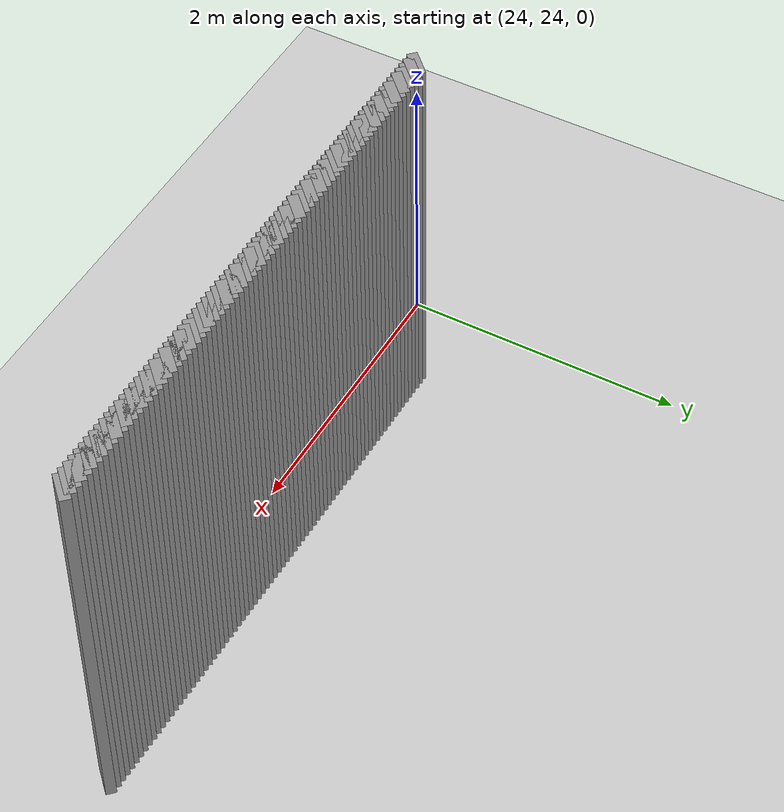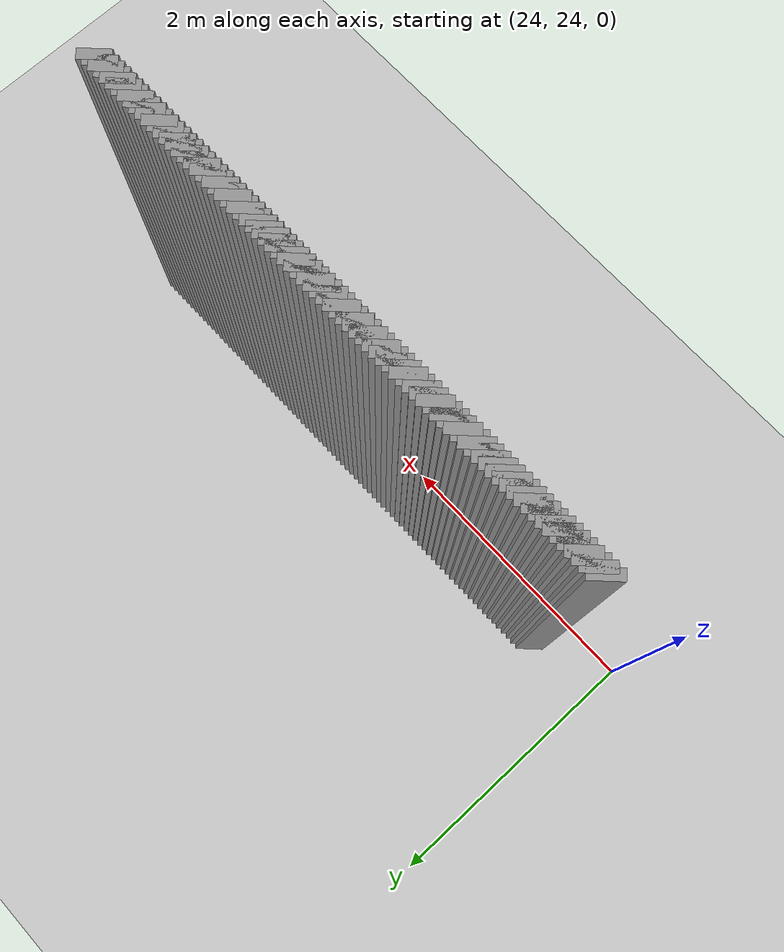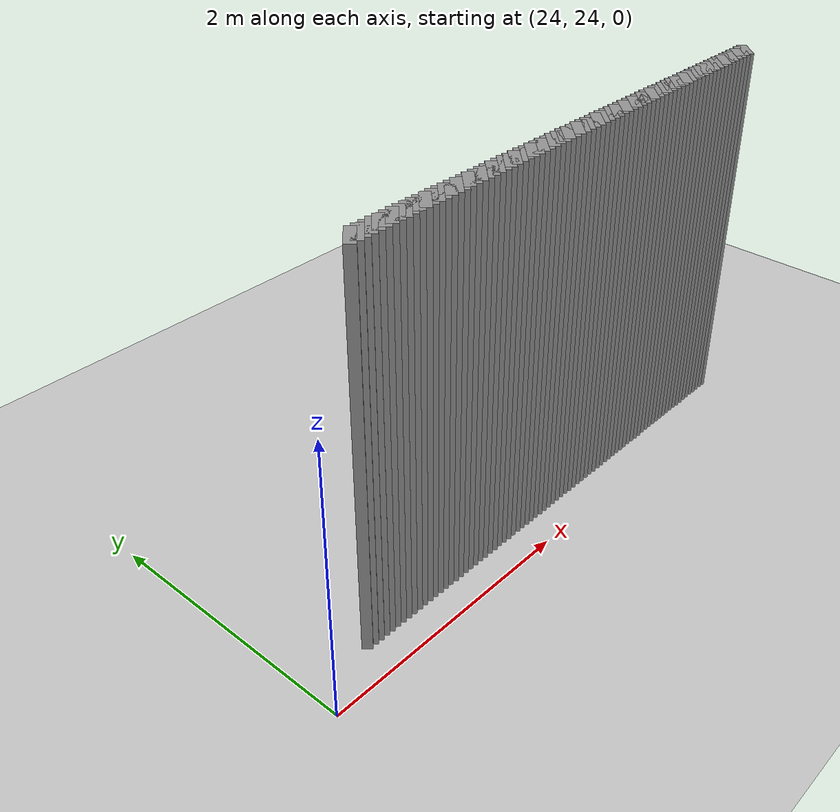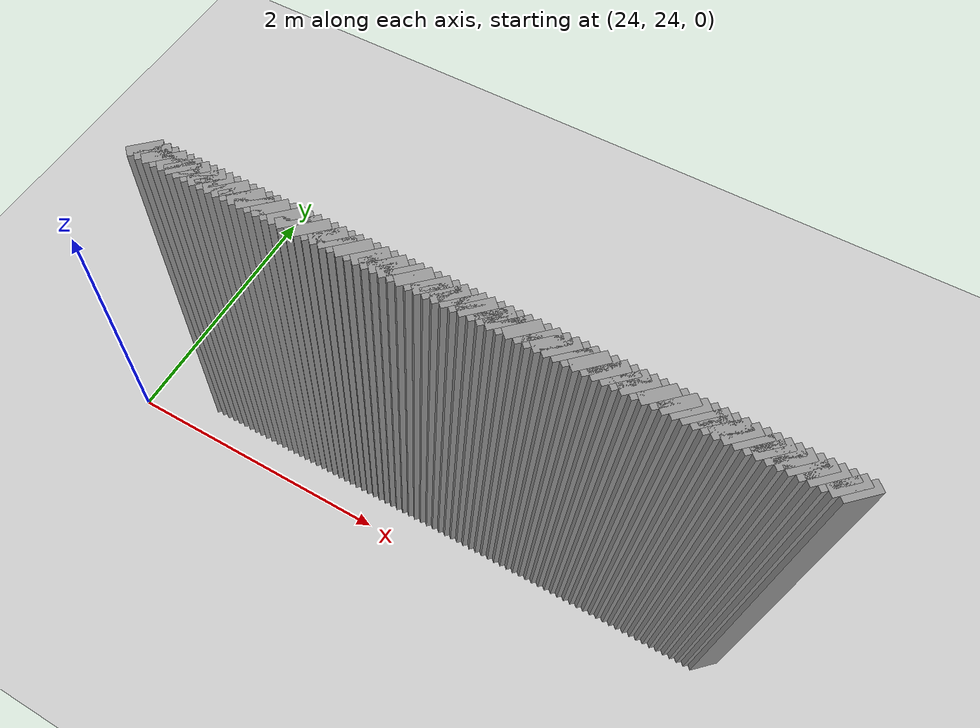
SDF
<sdf version="1.5">
 <world name="default">
  <include><uri>model://ground_plane</uri></include>
  <include><uri>model://sun</uri></include>
  <model name="grey_wall_1">
   <static>1</static>
   <link name="link">
    <pose>24.55 24.3  1.4 0 0 -0.785398163397</pose>
    <collision name="collision"><geometry><box><size>0.0707106781187 .2  2.8</size></box></geometry></collision>
    <visual name="visual">
     <cast_shadows>0</cast_shadows>
     <geometry><box><size>0.0707106781187 .2  2.8</size></box></geometry>
     <material>
      <script>
       <uri>model://grey_wall/materials/scripts</uri>
       <uri>model://grey_wall/materials/textures</uri>
       <name>vrc/grey_wall</name>
      </script>
     </material>
    </visual>
   </link>
  </model>
  <model name="grey_wall_2">
   <static>1</static>
   <link name="link">
    <pose>24.6 24.3  1.4 0 0 -0.785398163397</pose>
    <collision name="collision"><geometry><box><size>0.0707106781187 .2  2.8</size></box></geometry></collision>
    <visual name="visual">
     <cast_shadows>0</cast_shadows>
     <geometry><box><size>0.0707106781187 .2  2.8</size></box></geometry>
     <material>
      <script>
       <uri>model://grey_wall/materials/scripts</uri>
       <uri>model://grey_wall/materials/textures</uri>
       <name>vrc/grey_wall</name>
      </script>
     </material>
    </visual>
   </link>
  </model>
  <model name="grey_wall_3">
   <static>1</static>
   <link name="link">
    <pose>24.65 24.3  1.4 0 0 -0.785398163397</pose>
    <collision name="collision"><geometry><box><size>0.0707106781187 .2  2.8</size></box></geometry></collision>
    <visual name="visual">
     <cast_shadows>0</cast_shadows>
     <geometry><box><size>0.0707106781187 .2  2.8</size></box></geometry>
     <material>
      <script>
       <uri>model://grey_wall/materials/scripts</uri>
       <uri>model://grey_wall/materials/textures</uri>
       <name>vrc/grey_wall</name>
      </script>
     </material>
    </visual>
   </link>
  </model>
  <model name="grey_wall_4">
   <static>1</static>
   <link name="link">
    <pose>24.7 24.3  1.4 0 0 -0.785398163397</pose>
    <collision name="collision"><geometry><box><size>0.0707106781187 .2  2.8</size></box></geometry></collision>
    <visual name="visual">
     <cast_shadows>0</cast_shadows>
     <geometry><box><size>0.0707106781187 .2  2.8</size></box></geometry>
     <material>
      <script>
       <uri>model://grey_wall/materials/scripts</uri>
       <uri>model://grey_wall/materials/textures</uri>
       <name>vrc/grey_wall</name>
      </script>
     </material>
    </visual>
   </link>
  </model>
  <model name="grey_wall_5">
   <static>1</static>
   <link name="link">
    <pose>24.75 24.3  1.4 0 0 -0.785398163397</pose>
    <collision name="collision"><geometry><box><size>0.0707106781187 .2  2.8</size></box></geometry></collision>
    <visual name="visual">
     <cast_shadows>0</cast_shadows>
     <geometry><box><size>0.0707106781187 .2  2.8</size></box></geometry>
     <material>
      <script>
       <uri>model://grey_wall/materials/scripts</uri>
       <uri>model://grey_wall/materials/textures</uri>
       <name>vrc/grey_wall</name>
      </script>
     </material>
    </visual>
   </link>
  </model>
  <model name="grey_wall_6">
   <static>1</static>
   <link name="link">
    <pose>24.8 24.3  1.4 0 0 -0.785398163397</pose>
    <collision name="collision"><geometry><box><size>0.0707106781187 .2  2.8</size></box></geometry></collision>
    <visual name="visual">
     <cast_shadows>0</cast_shadows>
     <geometry><box><size>0.0707106781187 .2  2.8</size></box></geometry>
     <material>
      <script>
       <uri>model://grey_wall/materials/scripts</uri>
       <uri>model://grey_wall/materials/textures</uri>
       <name>vrc/grey_wall</name>
      </script>
     </material>
    </visual>
   </link>
  </model>
  <model name="grey_wall_7">
   <static>1</static>
   <link name="link">
    <pose>24.85 24.3  1.4 0 0 -0.785398163397</pose>
    <collision name="collision"><geometry><box><size>0.0707106781187 .2  2.8</size></box></geometry></collision>
    <visual name="visual">
     <cast_shadows>0</cast_shadows>
     <geometry><box><size>0.0707106781187 .2  2.8</size></box></geometry>
     <material>
      <script>
       <uri>model://grey_wall/materials/scripts</uri>
       <uri>model://grey_wall/materials/textures</uri>
       <name>vrc/grey_wall</name>
      </script>
     </material>
    </visual>
   </link>
  </model>
  <model name="grey_wall_8">
   <static>1</static>
   <link name="link">
    <pose>24.9 24.3  1.4 0 0 -0.785398163397</pose>
    <collision name="collision"><geometry><box><size>0.0707106781187 .2  2.8</size></box></geometry></collision>
    <visual name="visual">
     <cast_shadows>0</cast_shadows>
     <geometry><box><size>0.0707106781187 .2  2.8</size></box></geometry>
     <material>
      <script>
       <uri>model://grey_wall/materials/scripts</uri>
       <uri>model://grey_wall/materials/textures</uri>
       <name>vrc/grey_wall</name>
      </script>
     </material>
    </visual>
   </link>
  </model>
  <model name="grey_wall_9">
   <static>1</static>
   <link name="link">
    <pose>24.95 24.3  1.4 0 0 -0.785398163397</pose>
    <collision name="collision"><geometry><box><size>0.0707106781187 .2  2.8</size></box></geometry></collision>
    <visual name="visual">
     <cast_shadows>0</cast_shadows>
     <geometry><box><size>0.0707106781187 .2  2.8</size></box></geometry>
     <material>
      <script>
       <uri>model://grey_wall/materials/scripts</uri>
       <uri>model://grey_wall/materials/textures</uri>
       <name>vrc/grey_wall</name>
      </script>
     </material>
    </visual>
   </link>
  </model>
  <model name="grey_wall_10">
   <static>1</static>
   <link name="link">
    <pose>25.0 24.3  1.4 0 0 -0.785398163397</pose>
    <collision name="collision"><geometry><box><size>0.0707106781187 .2  2.8</size></box></geometry></collision>
    <visual name="visual">
     <cast_shadows>0</cast_shadows>
     <geometry><box><size>0.0707106781187 .2  2.8</size></box></geometry>
     <material>
      <script>
       <uri>model://grey_wall/materials/scripts</uri>
       <uri>model://grey_wall/materials/textures</uri>
       <name>vrc/grey_wall</name>
      </script>
     </material>
    </visual>
   </link>
  </model>
  <model name="grey_wall_11">
   <static>1</static>
   <link name="link">
    <pose>25.05 24.3  1.4 0 0 -0.785398163397</pose>
    <collision name="collision"><geometry><box><size>0.0707106781187 .2  2.8</size></box></geometry></collision>
    <visual name="visual">
     <cast_shadows>0</cast_shadows>
     <geometry><box><size>0.0707106781187 .2  2.8</size></box></geometry>
     <material>
      <script>
       <uri>model://grey_wall/materials/scripts</uri>
       <uri>model://grey_wall/materials/textures</uri>
       <name>vrc/grey_wall</name>
      </script>
     </material>
    </visual>
   </link>
  </model>
  <model name="grey_wall_12">
   <static>1</static>
   <link name="link">
    <pose>25.1 24.3  1.4 0 0 -0.785398163397</pose>
    <collision name="collision"><geometry><box><size>0.0707106781187 .2  2.8</size></box></geometry></collision>
    <visual name="visual">
     <cast_shadows>0</cast_shadows>
     <geometry><box><size>0.0707106781187 .2  2.8</size></box></geometry>
     <material>
      <script>
       <uri>model://grey_wall/materials/scripts</uri>
       <uri>model://grey_wall/materials/textures</uri>
       <name>vrc/grey_wall</name>
      </script>
     </material>
    </visual>
   </link>
  </model>
  <model name="grey_wall_13">
   <static>1</static>
   <link name="link">
    <pose>25.15 24.3  1.4 0 0 -0.785398163397</pose>
    <collision name="collision"><geometry><box><size>0.0707106781187 .2  2.8</size></box></geometry></collision>
    <visual name="visual">
     <cast_shadows>0</cast_shadows>
     <geometry><box><size>0.0707106781187 .2  2.8</size></box></geometry>
     <material>
      <script>
       <uri>model://grey_wall/materials/scripts</uri>
       <uri>model://grey_wall/materials/textures</uri>
       <name>vrc/grey_wall</name>
      </script>
     </material>
    </visual>
   </link>
  </model>
  <model name="grey_wall_14">
   <static>1</static>
   <link name="link">
    <pose>25.2 24.3  1.4 0 0 -0.785398163397</pose>
    <collision name="collision"><geometry><box><size>0.0707106781187 .2  2.8</size></box></geometry></collision>
    <visual name="visual">
     <cast_shadows>0</cast_shadows>
     <geometry><box><size>0.0707106781187 .2  2.8</size></box></geometry>
     <material>
      <script>
       <uri>model://grey_wall/materials/scripts</uri>
       <uri>model://grey_wall/materials/textures</uri>
       <name>vrc/grey_wall</name>
      </script>
     </material>
    </visual>
   </link>
  </model>
  <model name="grey_wall_15">
   <static>1</static>
   <link name="link">
    <pose>25.25 24.3  1.4 0 0 -0.785398163397</pose>
    <collision name="collision"><geometry><box><size>0.0707106781187 .2  2.8</size></box></geometry></collision>
    <visual name="visual">
     <cast_shadows>0</cast_shadows>
     <geometry><box><size>0.0707106781187 .2  2.8</size></box></geometry>
     <material>
      <script>
       <uri>model://grey_wall/materials/scripts</uri>
       <uri>model://grey_wall/materials/textures</uri>
       <name>vrc/grey_wall</name>
      </script>
     </material>
    </visual>
   </link>
  </model>
  <model name="grey_wall_16">
   <static>1</static>
   <link name="link">
    <pose>25.3 24.3  1.4 0 0 -0.785398163397</pose>
    <collision name="collision"><geometry><box><size>0.0707106781187 .2  2.8</size></box></geometry></collision>
    <visual name="visual">
     <cast_shadows>0</cast_shadows>
     <geometry><box><size>0.0707106781187 .2  2.8</size></box></geometry>
     <material>
      <script>
       <uri>model://grey_wall/materials/scripts</uri>
       <uri>model://grey_wall/materials/textures</uri>
       <name>vrc/grey_wall</name>
      </script>
     </material>
    </visual>
   </link>
  </model>
  <model name="grey_wall_17">
   <static>1</static>
   <link name="link">
    <pose>25.35 24.3  1.4 0 0 -0.785398163397</pose>
    <collision name="collision"><geometry><box><size>0.0707106781187 .2  2.8</size></box></geometry></collision>
    <visual name="visual">
     <cast_shadows>0</cast_shadows>
     <geometry><box><size>0.0707106781187 .2  2.8</size></box></geometry>
     <material>
      <script>
       <uri>model://grey_wall/materials/scripts</uri>
       <uri>model://grey_wall/materials/textures</uri>
       <name>vrc/grey_wall</name>
      </script>
     </material>
    </visual>
   </link>
  </model>
  <model name="grey_wall_18">
   <static>1</static>
   <link name="link">
    <pose>25.4 24.3  1.4 0 0 -0.785398163397</pose>
    <collision name="collision"><geometry><box><size>0.0707106781187 .2  2.8</size></box></geometry></collision>
    <visual name="visual">
     <cast_shadows>0</cast_shadows>
     <geometry><box><size>0.0707106781187 .2  2.8</size></box></geometry>
     <material>
      <script>
       <uri>model://grey_wall/materials/scripts</uri>
       <uri>model://grey_wall/materials/textures</uri>
       <name>vrc/grey_wall</name>
      </script>
     </material>
    </visual>
   </link>
  </model>
  <model name="grey_wall_19">
   <static>1</static>
   <link name="link">
    <pose>25.45 24.3  1.4 0 0 -0.785398163397</pose>
    <collision name="collision"><geometry><box><size>0.0707106781187 .2  2.8</size></box></geometry></collision>
    <visual name="visual">
     <cast_shadows>0</cast_shadows>
     <geometry><box><size>0.0707106781187 .2  2.8</size></box></geometry>
     <material>
      <script>
       <uri>model://grey_wall/materials/scripts</uri>
       <uri>model://grey_wall/materials/textures</uri>
       <name>vrc/grey_wall</name>
      </script>
     </material>
    </visual>
   </link>
  </model>
  <model name="grey_wall_20">
   <static>1</static>
   <link name="link">
    <pose>25.5 24.3  1.4 0 0 -0.785398163397</pose>
    <collision name="collision"><geometry><box><size>0.0707106781187 .2  2.8</size></box></geometry></collision>
    <visual name="visual">
     <cast_shadows>0</cast_shadows>
     <geometry><box><size>0.0707106781187 .2  2.8</size></box></geometry>
     <material>
      <script>
       <uri>model://grey_wall/materials/scripts</uri>
       <uri>model://grey_wall/materials/textures</uri>
       <name>vrc/grey_wall</name>
      </script>
     </material>
    </visual>
   </link>
  </model>
  <model name="grey_wall_21">
   <static>1</static>
   <link name="link">
    <pose>25.55 24.3  1.4 0 0 -0.785398163397</pose>
    <collision name="collision"><geometry><box><size>0.0707106781187 .2  2.8</size></box></geometry></collision>
    <visual name="visual">
     <cast_shadows>0</cast_shadows>
     <geometry><box><size>0.0707106781187 .2  2.8</size></box></geometry>
     <material>
      <script>
       <uri>model://grey_wall/materials/scripts</uri>
       <uri>model://grey_wall/materials/textures</uri>
       <name>vrc/grey_wall</name>
      </script>
     </material>
    </visual>
   </link>
  </model>
  <model name="grey_wall_22">
   <static>1</static>
   <link name="link">
    <pose>25.6 24.3  1.4 0 0 -0.785398163397</pose>
    <collision name="collision"><geometry><box><size>0.0707106781187 .2  2.8</size></box></geometry></collision>
    <visual name="visual">
     <cast_shadows>0</cast_shadows>
     <geometry><box><size>0.0707106781187 .2  2.8</size></box></geometry>
     <material>
      <script>
       <uri>model://grey_wall/materials/scripts</uri>
       <uri>model://grey_wall/materials/textures</uri>
       <name>vrc/grey_wall</name>
      </script>
     </material>
    </visual>
   </link>
  </model>
  <model name="grey_wall_23">
   <static>1</static>
   <link name="link">
    <pose>25.65 24.3  1.4 0 0 -0.785398163397</pose>
    <collision name="collision"><geometry><box><size>0.0707106781187 .2  2.8</size></box></geometry></collision>
    <visual name="visual">
     <cast_shadows>0</cast_shadows>
     <geometry><box><size>0.0707106781187 .2  2.8</size></box></geometry>
     <material>
      <script>
       <uri>model://grey_wall/materials/scripts</uri>
       <uri>model://grey_wall/materials/textures</uri>
       <name>vrc/grey_wall</name>
      </script>
     </material>
    </visual>
   </link>
  </model>
  <model name="grey_wall_24">
   <static>1</static>
   <link name="link">
    <pose>25.7 24.3  1.4 0 0 -0.785398163397</pose>
    <collision name="collision"><geometry><box><size>0.0707106781187 .2  2.8</size></box></geometry></collision>
    <visual name="visual">
     <cast_shadows>0</cast_shadows>
     <geometry><box><size>0.0707106781187 .2  2.8</size></box></geometry>
     <material>
      <script>
       <uri>model://grey_wall/materials/scripts</uri>
       <uri>model://grey_wall/materials/textures</uri>
       <name>vrc/grey_wall</name>
      </script>
     </material>
    </visual>
   </link>
  </model>
  <model name="grey_wall_25">
   <static>1</static>
   <link name="link">
    <pose>25.75 24.3  1.4 0 0 -0.785398163397</pose>
    <collision name="collision"><geometry><box><size>0.0707106781187 .2  2.8</size></box></geometry></collision>
    <visual name="visual">
     <cast_shadows>0</cast_shadows>
     <geometry><box><size>0.0707106781187 .2  2.8</size></box></geometry>
     <material>
      <script>
       <uri>model://grey_wall/materials/scripts</uri>
       <uri>model://grey_wall/materials/textures</uri>
       <name>vrc/grey_wall</name>
      </script>
     </material>
    </visual>
   </link>
  </model>
  <model name="grey_wall_26">
   <static>1</static>
   <link name="link">
    <pose>25.8 24.3  1.4 0 0 -0.785398163397</pose>
    <collision name="collision"><geometry><box><size>0.0707106781187 .2  2.8</size></box></geometry></collision>
    <visual name="visual">
     <cast_shadows>0</cast_shadows>
     <geometry><box><size>0.0707106781187 .2  2.8</size></box></geometry>
     <material>
      <script>
       <uri>model://grey_wall/materials/scripts</uri>
       <uri>model://grey_wall/materials/textures</uri>
       <name>vrc/grey_wall</name>
      </script>
     </material>
    </visual>
   </link>
  </model>
  <model name="grey_wall_27">
   <static>1</static>
   <link name="link">
    <pose>25.85 24.3  1.4 0 0 -0.785398163397</pose>
    <collision name="collision"><geometry><box><size>0.0707106781187 .2  2.8</size></box></geometry></collision>
    <visual name="visual">
     <cast_shadows>0</cast_shadows>
     <geometry><box><size>0.0707106781187 .2  2.8</size></box></geometry>
     <material>
      <script>
       <uri>model://grey_wall/materials/scripts</uri>
       <uri>model://grey_wall/materials/textures</uri>
       <name>vrc/grey_wall</name>
      </script>
     </material>
    </visual>
   </link>
  </model>
  <model name="grey_wall_28">
   <static>1</static>
   <link name="link">
    <pose>25.9 24.3  1.4 0 0 -0.785398163397</pose>
    <collision name="collision"><geometry><box><size>0.0707106781187 .2  2.8</size></box></geometry></collision>
    <visual name="visual">
     <cast_shadows>0</cast_shadows>
     <geometry><box><size>0.0707106781187 .2  2.8</size></box></geometry>
     <material>
      <script>
       <uri>model://grey_wall/materials/scripts</uri>
       <uri>model://grey_wall/materials/textures</uri>
       <name>vrc/grey_wall</name>
      </script>
     </material>
    </visual>
   </link>
  </model>
  <model name="grey_wall_29">
   <static>1</static>
   <link name="link">
    <pose>25.95 24.3  1.4 0 0 -0.785398163397</pose>
    <collision name="collision"><geometry><box><size>0.0707106781187 .2  2.8</size></box></geometry></collision>
    <visual name="visual">
     <cast_shadows>0</cast_shadows>
     <geometry><box><size>0.0707106781187 .2  2.8</size></box></geometry>
     <material>
      <script>
       <uri>model://grey_wall/materials/scripts</uri>
       <uri>model://grey_wall/materials/textures</uri>
       <name>vrc/grey_wall</name>
      </script>
     </material>
    </visual>
   </link>
  </model>
  <model name="grey_wall_30">
   <static>1</static>
   <link name="link">
    <pose>26.0 24.3  1.4 0 0 -0.785398163397</pose>
    <collision name="collision"><geometry><box><size>0.0707106781187 .2  2.8</size></box></geometry></collision>
    <visual name="visual">
     <cast_shadows>0</cast_shadows>
     <geometry><box><size>0.0707106781187 .2  2.8</size></box></geometry>
     <material>
      <script>
       <uri>model://grey_wall/materials/scripts</uri>
       <uri>model://grey_wall/materials/textures</uri>
       <name>vrc/grey_wall</name>
      </script>
     </material>
    </visual>
   </link>
  </model>
  <model name="grey_wall_31">
   <static>1</static>
   <link name="link">
    <pose>26.05 24.3  1.4 0 0 -0.785398163397</pose>
    <collision name="collision"><geometry><box><size>0.0707106781187 .2  2.8</size></box></geometry></collision>
    <visual name="visual">
     <cast_shadows>0</cast_shadows>
     <geometry><box><size>0.0707106781187 .2  2.8</size></box></geometry>
     <material>
      <script>
       <uri>model://grey_wall/materials/scripts</uri>
       <uri>model://grey_wall/materials/textures</uri>
       <name>vrc/grey_wall</name>
      </script>
     </material>
    </visual>
   </link>
  </model>
  <model name="grey_wall_32">
   <static>1</static>
   <link name="link">
    <pose>26.1 24.3  1.4 0 0 -0.785398163397</pose>
    <collision name="collision"><geometry><box><size>0.0707106781187 .2  2.8</size></box></geometry></collision>
    <visual name="visual">
     <cast_shadows>0</cast_shadows>
     <geometry><box><size>0.0707106781187 .2  2.8</size></box></geometry>
     <material>
      <script>
       <uri>model://grey_wall/materials/scripts</uri>
       <uri>model://grey_wall/materials/textures</uri>
       <name>vrc/grey_wall</name>
      </script>
     </material>
    </visual>
   </link>
  </model>
  <model name="grey_wall_33">
   <static>1</static>
   <link name="link">
    <pose>26.15 24.3  1.4 0 0 -0.785398163397</pose>
    <collision name="collision"><geometry><box><size>0.0707106781187 .2  2.8</size></box></geometry></collision>
    <visual name="visual">
     <cast_shadows>0</cast_shadows>
     <geometry><box><size>0.0707106781187 .2  2.8</size></box></geometry>
     <material>
      <script>
       <uri>model://grey_wall/materials/scripts</uri>
       <uri>model://grey_wall/materials/textures</uri>
       <name>vrc/grey_wall</name>
      </script>
     </material>
    </visual>
   </link>
  </model>
  <model name="grey_wall_34">
   <static>1</static>
   <link name="link">
    <pose>26.2 24.3  1.4 0 0 -0.785398163397</pose>
    <collision name="collision"><geometry><box><size>0.0707106781187 .2  2.8</size></box></geometry></collision>
    <visual name="visual">
     <cast_shadows>0</cast_shadows>
     <geometry><box><size>0.0707106781187 .2  2.8</size></box></geometry>
     <material>
      <script>
       <uri>model://grey_wall/materials/scripts</uri>
       <uri>model://grey_wall/materials/textures</uri>
       <name>vrc/grey_wall</name>
      </script>
     </material>
    </visual>
   </link>
  </model>
  <model name="grey_wall_35">
   <static>1</static>
   <link name="link">
    <pose>26.25 24.3  1.4 0 0 -0.785398163397</pose>
    <collision name="collision"><geometry><box><size>0.0707106781187 .2  2.8</size></box></geometry></collision>
    <visual name="visual">
     <cast_shadows>0</cast_shadows>
     <geometry><box><size>0.0707106781187 .2  2.8</size></box></geometry>
     <material>
      <script>
       <uri>model://grey_wall/materials/scripts</uri>
       <uri>model://grey_wall/materials/textures</uri>
       <name>vrc/grey_wall</name>
      </script>
     </material>
    </visual>
   </link>
  </model>
  <model name="grey_wall_36">
   <static>1</static>
   <link name="link">
    <pose>26.3 24.3  1.4 0 0 -0.785398163397</pose>
    <collision name="collision"><geometry><box><size>0.0707106781187 .2  2.8</size></box></geometry></collision>
    <visual name="visual">
     <cast_shadows>0</cast_shadows>
     <geometry><box><size>0.0707106781187 .2  2.8</size></box></geometry>
     <material>
      <script>
       <uri>model://grey_wall/materials/scripts</uri>
       <uri>model://grey_wall/materials/textures</uri>
       <name>vrc/grey_wall</name>
      </script>
     </material>
    </visual>
   </link>
  </model>
  <model name="grey_wall_37">
   <static>1</static>
   <link name="link">
    <pose>26.35 24.3  1.4 0 0 -0.785398163397</pose>
    <collision name="collision"><geometry><box><size>0.0707106781187 .2  2.8</size></box></geometry></collision>
    <visual name="visual">
     <cast_shadows>0</cast_shadows>
     <geometry><box><size>0.0707106781187 .2  2.8</size></box></geometry>
     <material>
      <script>
       <uri>model://grey_wall/materials/scripts</uri>
       <uri>model://grey_wall/materials/textures</uri>
       <name>vrc/grey_wall</name>
      </script>
     </material>
    </visual>
   </link>
  </model>
  <model name="grey_wall_38">
   <static>1</static>
   <link name="link">
    <pose>26.4 24.3  1.4 0 0 -0.785398163397</pose>
    <collision name="collision"><geometry><box><size>0.0707106781187 .2  2.8</size></box></geometry></collision>
    <visual name="visual">
     <cast_shadows>0</cast_shadows>
     <geometry><box><size>0.0707106781187 .2  2.8</size></box></geometry>
     <material>
      <script>
       <uri>model://grey_wall/materials/scripts</uri>
       <uri>model://grey_wall/materials/textures</uri>
       <name>vrc/grey_wall</name>
      </script>
     </material>
    </visual>
   </link>
  </model>
  <model name="grey_wall_39">
   <static>1</static>
   <link name="link">
    <pose>26.45 24.3  1.4 0 0 -0.785398163397</pose>
    <collision name="collision"><geometry><box><size>0.0707106781187 .2  2.8</size></box></geometry></collision>
    <visual name="visual">
     <cast_shadows>0</cast_shadows>
     <geometry><box><size>0.0707106781187 .2  2.8</size></box></geometry>
     <material>
      <script>
       <uri>model://grey_wall/materials/scripts</uri>
       <uri>model://grey_wall/materials/textures</uri>
       <name>vrc/grey_wall</name>
      </script>
     </material>
    </visual>
   </link>
  </model>
  <model name="grey_wall_40">
   <static>1</static>
   <link name="link">
    <pose>26.5 24.3  1.4 0 0 -0.785398163397</pose>
    <collision name="collision"><geometry><box><size>0.0707106781187 .2  2.8</size></box></geometry></collision>
    <visual name="visual">
     <cast_shadows>0</cast_shadows>
     <geometry><box><size>0.0707106781187 .2  2.8</size></box></geometry>
     <material>
      <script>
       <uri>model://grey_wall/materials/scripts</uri>
       <uri>model://grey_wall/materials/textures</uri>
       <name>vrc/grey_wall</name>
      </script>
     </material>
    </visual>
   </link>
  </model>
  <model name="grey_wall_41">
   <static>1</static>
   <link name="link">
    <pose>26.55 24.3  1.4 0 0 -0.785398163397</pose>
    <collision name="collision"><geometry><box><size>0.0707106781187 .2  2.8</size></box></geometry></collision>
    <visual name="visual">
     <cast_shadows>0</cast_shadows>
     <geometry><box><size>0.0707106781187 .2  2.8</size></box></geometry>
     <material>
      <script>
       <uri>model://grey_wall/materials/scripts</uri>
       <uri>model://grey_wall/materials/textures</uri>
       <name>vrc/grey_wall</name>
      </script>
     </material>
    </visual>
   </link>
  </model>
  <model name="grey_wall_42">
   <static>1</static>
   <link name="link">
    <pose>26.6 24.3  1.4 0 0 -0.785398163397</pose>
    <collision name="collision"><geometry><box><size>0.0707106781187 .2  2.8</size></box></geometry></collision>
    <visual name="visual">
     <cast_shadows>0</cast_shadows>
     <geometry><box><size>0.0707106781187 .2  2.8</size></box></geometry>
     <material>
      <script>
       <uri>model://grey_wall/materials/scripts</uri>
       <uri>model://grey_wall/materials/textures</uri>
       <name>vrc/grey_wall</name>
      </script>
     </material>
    </visual>
   </link>
  </model>
  <model name="grey_wall_43">
   <static>1</static>
   <link name="link">
    <pose>26.65 24.3  1.4 0 0 -0.785398163397</pose>
    <collision name="collision"><geometry><box><size>0.0707106781187 .2  2.8</size></box></geometry></collision>
    <visual name="visual">
     <cast_shadows>0</cast_shadows>
     <geometry><box><size>0.0707106781187 .2  2.8</size></box></geometry>
     <material>
      <script>
       <uri>model://grey_wall/materials/scripts</uri>
       <uri>model://grey_wall/materials/textures</uri>
       <name>vrc/grey_wall</name>
      </script>
     </material>
    </visual>
   </link>
  </model>
  <model name="grey_wall_44">
   <static>1</static>
   <link name="link">
    <pose>26.7 24.3  1.4 0 0 -0.785398163397</pose>
    <collision name="collision"><geometry><box><size>0.0707106781187 .2  2.8</size></box></geometry></collision>
    <visual name="visual">
     <cast_shadows>0</cast_shadows>
     <geometry><box><size>0.0707106781187 .2  2.8</size></box></geometry>
     <material>
      <script>
       <uri>model://grey_wall/materials/scripts</uri>
       <uri>model://grey_wall/materials/textures</uri>
       <name>vrc/grey_wall</name>
      </script>
     </material>
    </visual>
   </link>
  </model>
  <model name="grey_wall_45">
   <static>1</static>
   <link name="link">
    <pose>26.75 24.3  1.4 0 0 -0.785398163397</pose>
    <collision name="collision"><geometry><box><size>0.0707106781187 .2  2.8</size></box></geometry></collision>
    <visual name="visual">
     <cast_shadows>0</cast_shadows>
     <geometry><box><size>0.0707106781187 .2  2.8</size></box></geometry>
     <material>
      <script>
       <uri>model://grey_wall/materials/scripts</uri>
       <uri>model://grey_wall/materials/textures</uri>
       <name>vrc/grey_wall</name>
      </script>
     </material>
    </visual>
   </link>
  </model>
  <model name="grey_wall_46">
   <static>1</static>
   <link name="link">
    <pose>26.8 24.3  1.4 0 0 -0.785398163397</pose>
    <collision name="collision"><geometry><box><size>0.0707106781187 .2  2.8</size></box></geometry></collision>
    <visual name="visual">
     <cast_shadows>0</cast_shadows>
     <geometry><box><size>0.0707106781187 .2  2.8</size></box></geometry>
     <material>
      <script>
       <uri>model://grey_wall/materials/scripts</uri>
       <uri>model://grey_wall/materials/textures</uri>
       <name>vrc/grey_wall</name>
      </script>
     </material>
    </visual>
   </link>
  </model>
  <model name="grey_wall_47">
   <static>1</static>
   <link name="link">
    <pose>26.85 24.3  1.4 0 0 -0.785398163397</pose>
    <collision name="collision"><geometry><box><size>0.0707106781187 .2  2.8</size></box></geometry></collision>
    <visual name="visual">
     <cast_shadows>0</cast_shadows>
     <geometry><box><size>0.0707106781187 .2  2.8</size></box></geometry>
     <material>
      <script>
       <uri>model://grey_wall/materials/scripts</uri>
       <uri>model://grey_wall/materials/textures</uri>
       <name>vrc/grey_wall</name>
      </script>
     </material>
    </visual>
   </link>
  </model>
  <model name="grey_wall_48">
   <static>1</static>
   <link name="link">
    <pose>26.9 24.3  1.4 0 0 -0.785398163397</pose>
    <collision name="collision"><geometry><box><size>0.0707106781187 .2  2.8</size></box></geometry></collision>
    <visual name="visual">
     <cast_shadows>0</cast_shadows>
     <geometry><box><size>0.0707106781187 .2  2.8</size></box></geometry>
     <material>
      <script>
       <uri>model://grey_wall/materials/scripts</uri>
       <uri>model://grey_wall/materials/textures</uri>
       <name>vrc/grey_wall</name>
      </script>
     </material>
    </visual>
   </link>
  </model>
  <model name="grey_wall_49">
   <static>1</static>
   <link name="link">
    <pose>26.95 24.3  1.4 0 0 -0.785398163397</pose>
    <collision name="collision"><geometry><box><size>0.0707106781187 .2  2.8</size></box></geometry></collision>
    <visual name="visual">
     <cast_shadows>0</cast_shadows>
     <geometry><box><size>0.0707106781187 .2  2.8</size></box></geometry>
     <material>
      <script>
       <uri>model://grey_wall/materials/scripts</uri>
       <uri>model://grey_wall/materials/textures</uri>
       <name>vrc/grey_wall</name>
      </script>
     </material>
    </visual>
   </link>
  </model>
  <model name="grey_wall_50">
   <static>1</static>
   <link name="link">
    <pose>27.0 24.3  1.4 0 0 -0.785398163397</pose>
    <collision name="collision"><geometry><box><size>0.0707106781187 .2  2.8</size></box></geometry></collision>
    <visual name="visual">
     <cast_shadows>0</cast_shadows>
     <geometry><box><size>0.0707106781187 .2  2.8</size></box></geometry>
     <material>
      <script>
       <uri>model://grey_wall/materials/scripts</uri>
       <uri>model://grey_wall/materials/textures</uri>
       <name>vrc/grey_wall</name>
      </script>
     </material>
    </visual>
   </link>
  </model>
  <model name="grey_wall_51">
   <static>1</static>
   <link name="link">
    <pose>27.05 24.3  1.4 0 0 -0.785398163397</pose>
    <collision name="collision"><geometry><box><size>0.0707106781187 .2  2.8</size></box></geometry></collision>
    <visual name="visual">
     <cast_shadows>0</cast_shadows>
     <geometry><box><size>0.0707106781187 .2  2.8</size></box></geometry>
     <material>
      <script>
       <uri>model://grey_wall/materials/scripts</uri>
       <uri>model://grey_wall/materials/textures</uri>
       <name>vrc/grey_wall</name>
      </script>
     </material>
    </visual>
   </link>
  </model>
  <model name="grey_wall_52">
   <static>1</static>
   <link name="link">
    <pose>27.1 24.3  1.4 0 0 -0.785398163397</pose>
    <collision name="collision"><geometry><box><size>0.0707106781187 .2  2.8</size></box></geometry></collision>
    <visual name="visual">
     <cast_shadows>0</cast_shadows>
     <geometry><box><size>0.0707106781187 .2  2.8</size></box></geometry>
     <material>
      <script>
       <uri>model://grey_wall/materials/scripts</uri>
       <uri>model://grey_wall/materials/textures</uri>
       <name>vrc/grey_wall</name>
      </script>
     </material>
    </visual>
   </link>
  </model>
  <model name="grey_wall_53">
   <static>1</static>
   <link name="link">
    <pose>27.15 24.3  1.4 0 0 -0.785398163397</pose>
    <collision name="collision"><geometry><box><size>0.0707106781187 .2  2.8</size></box></geometry></collision>
    <visual name="visual">
     <cast_shadows>0</cast_shadows>
     <geometry><box><size>0.0707106781187 .2  2.8</size></box></geometry>
     <material>
      <script>
       <uri>model://grey_wall/materials/scripts</uri>
       <uri>model://grey_wall/materials/textures</uri>
       <name>vrc/grey_wall</name>
      </script>
     </material>
    </visual>
   </link>
  </model>
  <model name="grey_wall_54">
   <static>1</static>
   <link name="link">
    <pose>27.2 24.3  1.4 0 0 -0.785398163397</pose>
    <collision name="collision"><geometry><box><size>0.0707106781187 .2  2.8</size></box></geometry></collision>
    <visual name="visual">
     <cast_shadows>0</cast_shadows>
     <geometry><box><size>0.0707106781187 .2  2.8</size></box></geometry>
     <material>
      <script>
       <uri>model://grey_wall/materials/scripts</uri>
       <uri>model://grey_wall/materials/textures</uri>
       <name>vrc/grey_wall</name>
      </script>
     </material>
    </visual>
   </link>
  </model>
  <model name="grey_wall_55">
   <static>1</static>
   <link name="link">
    <pose>27.25 24.3  1.4 0 0 -0.785398163397</pose>
    <collision name="collision"><geometry><box><size>0.0707106781187 .2  2.8</size></box></geometry></collision>
    <visual name="visual">
     <cast_shadows>0</cast_shadows>
     <geometry><box><size>0.0707106781187 .2  2.8</size></box></geometry>
     <material>
      <script>
       <uri>model://grey_wall/materials/scripts</uri>
       <uri>model://grey_wall/materials/textures</uri>
       <name>vrc/grey_wall</name>
      </script>
     </material>
    </visual>
   </link>
  </model>
  <model name="grey_wall_56">
   <static>1</static>
   <link name="link">
    <pose>27.3 24.3  1.4 0 0 -0.785398163397</pose>
    <collision name="collision"><geometry><box><size>0.0707106781187 .2  2.8</size></box></geometry></collision>
    <visual name="visual">
     <cast_shadows>0</cast_shadows>
     <geometry><box><size>0.0707106781187 .2  2.8</size></box></geometry>
     <material>
      <script>
       <uri>model://grey_wall/materials/scripts</uri>
       <uri>model://grey_wall/materials/textures</uri>
       <name>vrc/grey_wall</name>
      </script>
     </material>
    </visual>
   </link>
  </model>
  <model name="grey_wall_57">
   <static>1</static>
   <link name="link">
    <pose>27.35 24.3  1.4 0 0 -0.785398163397</pose>
    <collision name="collision"><geometry><box><size>0.0707106781187 .2  2.8</size></box></geometry></collision>
    <visual name="visual">
     <cast_shadows>0</cast_shadows>
     <geometry><box><size>0.0707106781187 .2  2.8</size></box></geometry>
     <material>
      <script>
       <uri>model://grey_wall/materials/scripts</uri>
       <uri>model://grey_wall/materials/textures</uri>
       <name>vrc/grey_wall</name>
      </script>
     </material>
    </visual>
   </link>
  </model>
  <model name="grey_wall_58">
   <static>1</static>
   <link name="link">
    <pose>27.4 24.3  1.4 0 0 -0.785398163397</pose>
    <collision name="collision"><geometry><box><size>0.0707106781187 .2  2.8</size></box></geometry></collision>
    <visual name="visual">
     <cast_shadows>0</cast_shadows>
     <geometry><box><size>0.0707106781187 .2  2.8</size></box></geometry>
     <material>
      <script>
       <uri>model://grey_wall/materials/scripts</uri>
       <uri>model://grey_wall/materials/textures</uri>
       <name>vrc/grey_wall</name>
      </script>
     </material>
    </visual>
   </link>
  </model>
  <model name="grey_wall_59">
   <static>1</static>
   <link name="link">
    <pose>27.45 24.3  1.4 0 0 -0.785398163397</pose>
    <collision name="collision"><geometry><box><size>0.0707106781187 .2  2.8</size></box></geometry></collision>
    <visual name="visual">
     <cast_shadows>0</cast_shadows>
     <geometry><box><size>0.0707106781187 .2  2.8</size></box></geometry>
     <material>
      <script>
       <uri>model://grey_wall/materials/scripts</uri>
       <uri>model://grey_wall/materials/textures</uri>
       <name>vrc/grey_wall</name>
      </script>
     </material>
    </visual>
   </link>
  </model>
  <model name="grey_wall_60">
   <static>1</static>
   <link name="link">
    <pose>27.5 24.3  1.4 0 0 -0.785398163397</pose>
    <collision name="collision"><geometry><box><size>0.0707106781187 .2  2.8</size></box></geometry></collision>
    <visual name="visual">
     <cast_shadows>0</cast_shadows>
     <geometry><box><size>0.0707106781187 .2  2.8</size></box></geometry>
     <material>
      <script>
       <uri>model://grey_wall/materials/scripts</uri>
       <uri>model://grey_wall/materials/textures</uri>
       <name>vrc/grey_wall</name>
      </script>
     </material>
    </visual>
   </link>
  </model>
  <model name="grey_wall_61">
   <static>1</static>
   <link name="link">
    <pose>27.55 24.3  1.4 0 0 -0.785398163397</pose>
    <collision name="collision"><geometry><box><size>0.0707106781187 .2  2.8</size></box></geometry></collision>
    <visual name="visual">
     <cast_shadows>0</cast_shadows>
     <geometry><box><size>0.0707106781187 .2  2.8</size></box></geometry>
     <material>
      <script>
       <uri>model://grey_wall/materials/scripts</uri>
       <uri>model://grey_wall/materials/textures</uri>
       <name>vrc/grey_wall</name>
      </script>
     </material>
    </visual>
   </link>
  </model>
  <model name="grey_wall_62">
   <static>1</static>
   <link name="link">
    <pose>27.6 24.3  1.4 0 0 -0.785398163397</pose>
    <collision name="collision"><geometry><box><size>0.0707106781187 .2  2.8</size></box></geometry></collision>
    <visual name="visual">
     <cast_shadows>0</cast_shadows>
     <geometry><box><size>0.0707106781187 .2  2.8</size></box></geometry>
     <material>
      <script>
       <uri>model://grey_wall/materials/scripts</uri>
       <uri>model://grey_wall/materials/textures</uri>
       <name>vrc/grey_wall</name>
      </script>
     </material>
    </visual>
   </link>
  </model>
  <model name="grey_wall_63">
   <static>1</static>
   <link name="link">
    <pose>27.65 24.3  1.4 0 0 -0.785398163397</pose>
    <collision name="collision"><geometry><box><size>0.0707106781187 .2  2.8</size></box></geometry></collision>
    <visual name="visual">
     <cast_shadows>0</cast_shadows>
     <geometry><box><size>0.0707106781187 .2  2.8</size></box></geometry>
     <material>
      <script>
       <uri>model://grey_wall/materials/scripts</uri>
       <uri>model://grey_wall/materials/textures</uri>
       <name>vrc/grey_wall</name>
      </script>
     </material>
    </visual>
   </link>
  </model>
  <model name="grey_wall_64">
   <static>1</static>
   <link name="link">
    <pose>27.7 24.3  1.4 0 0 -0.785398163397</pose>
    <collision name="collision"><geometry><box><size>0.0707106781187 .2  2.8</size></box></geometry></collision>
    <visual name="visual">
     <cast_shadows>0</cast_shadows>
     <geometry><box><size>0.0707106781187 .2  2.8</size></box></geometry>
     <material>
      <script>
       <uri>model://grey_wall/materials/scripts</uri>
       <uri>model://grey_wall/materials/textures</uri>
       <name>vrc/grey_wall</name>
      </script>
     </material>
    </visual>
   </link>
  </model>
  <model name="grey_wall_65">
   <static>1</static>
   <link name="link">
    <pose>27.75 24.3  1.4 0 0 -0.785398163397</pose>
    <collision name="collision"><geometry><box><size>0.0707106781187 .2  2.8</size></box></geometry></collision>
    <visual name="visual">
     <cast_shadows>0</cast_shadows>
     <geometry><box><size>0.0707106781187 .2  2.8</size></box></geometry>
     <material>
      <script>
       <uri>model://grey_wall/materials/scripts</uri>
       <uri>model://grey_wall/materials/textures</uri>
       <name>vrc/grey_wall</name>
      </script>
     </material>
    </visual>
   </link>
  </model>
  <model name="grey_wall_66">
   <static>1</static>
   <link name="link">
    <pose>27.8 24.3  1.4 0 0 -0.785398163397</pose>
    <collision name="collision"><geometry><box><size>0.0707106781187 .2  2.8</size></box></geometry></collision>
    <visual name="visual">
     <cast_shadows>0</cast_shadows>
     <geometry><box><size>0.0707106781187 .2  2.8</size></box></geometry>
     <material>
      <script>
       <uri>model://grey_wall/materials/scripts</uri>
       <uri>model://grey_wall/materials/textures</uri>
       <name>vrc/grey_wall</name>
      </script>
     </material>
    </visual>
   </link>
  </model>
  <model name="grey_wall_67">
   <static>1</static>
   <link name="link">
    <pose>27.85 24.3  1.4 0 0 -0.785398163397</pose>
    <collision name="collision"><geometry><box><size>0.0707106781187 .2  2.8</size></box></geometry></collision>
    <visual name="visual">
     <cast_shadows>0</cast_shadows>
     <geometry><box><size>0.0707106781187 .2  2.8</size></box></geometry>
     <material>
      <script>
       <uri>model://grey_wall/materials/scripts</uri>
       <uri>model://grey_wall/materials/textures</uri>
       <name>vrc/grey_wall</name>
      </script>
     </material>
    </visual>
   </link>
  </model>
  <model name="grey_wall_68">
   <static>1</static>
   <link name="link">
    <pose>27.9 24.3  1.4 0 0 -0.785398163397</pose>
    <collision name="collision"><geometry><box><size>0.0707106781187 .2  2.8</size></box></geometry></collision>
    <visual name="visual">
     <cast_shadows>0</cast_shadows>
     <geometry><box><size>0.0707106781187 .2  2.8</size></box></geometry>
     <material>
      <script>
       <uri>model://grey_wall/materials/scripts</uri>
       <uri>model://grey_wall/materials/textures</uri>
       <name>vrc/grey_wall</name>
      </script>
     </material>
    </visual>
   </link>
  </model>
  <model name="grey_wall_69">
   <static>1</static>
   <link name="link">
    <pose>27.95 24.3  1.4 0 0 -0.785398163397</pose>
    <collision name="collision"><geometry><box><size>0.0707106781187 .2  2.8</size></box></geometry></collision>
    <visual name="visual">
     <cast_shadows>0</cast_shadows>
     <geometry><box><size>0.0707106781187 .2  2.8</size></box></geometry>
     <material>
      <script>
       <uri>model://grey_wall/materials/scripts</uri>
       <uri>model://grey_wall/materials/textures</uri>
       <name>vrc/grey_wall</name>
      </script>
     </material>
    </visual>
   </link>
  </model>
  <model name="grey_wall_70">
   <static>1</static>
   <link name="link">
    <pose>28.0 24.3  1.4 0 0 -0.785398163397</pose>
    <collision name="collision"><geometry><box><size>0.0707106781187 .2  2.8</size></box></geometry></collision>
    <visual name="visual">
     <cast_shadows>0</cast_shadows>
     <geometry><box><size>0.0707106781187 .2  2.8</size></box></geometry>
     <material>
      <script>
       <uri>model://grey_wall/materials/scripts</uri>
       <uri>model://grey_wall/materials/textures</uri>
       <name>vrc/grey_wall</name>
      </script>
     </material>
    </visual>
   </link>
  </model>
  <model name="grey_wall_71">
   <static>1</static>
   <link name="link">
    <pose>28.05 24.3  1.4 0 0 -0.785398163397</pose>
    <collision name="collision"><geometry><box><size>0.0707106781187 .2  2.8</size></box></geometry></collision>
    <visual name="visual">
     <cast_shadows>0</cast_shadows>
     <geometry><box><size>0.0707106781187 .2  2.8</size></box></geometry>
     <material>
      <script>
       <uri>model://grey_wall/materials/scripts</uri>
       <uri>model://grey_wall/materials/textures</uri>
       <name>vrc/grey_wall</name>
      </script>
     </material>
    </visual>
   </link>
  </model>
  <model name="grey_wall_72">
   <static>1</static>
   <link name="link">
    <pose>28.1 24.3  1.4 0 0 -0.785398163397</pose>
    <collision name="collision"><geometry><box><size>0.0707106781187 .2  2.8</size></box></geometry></collision>
    <visual name="visual">
     <cast_shadows>0</cast_shadows>
     <geometry><box><size>0.0707106781187 .2  2.8</size></box></geometry>
     <material>
      <script>
       <uri>model://grey_wall/materials/scripts</uri>
       <uri>model://grey_wall/materials/textures</uri>
       <name>vrc/grey_wall</name>
      </script>
     </material>
    </visual>
   </link>
  </model>
  <model name="grey_wall_73">
   <static>1</static>
   <link name="link">
    <pose>28.15 24.3  1.4 0 0 -0.785398163397</pose>
    <collision name="collision"><geometry><box><size>0.0707106781187 .2  2.8</size></box></geometry></collision>
    <visual name="visual">
     <cast_shadows>0</cast_shadows>
     <geometry><box><size>0.0707106781187 .2  2.8</size></box></geometry>
     <material>
      <script>
       <uri>model://grey_wall/materials/scripts</uri>
       <uri>model://grey_wall/materials/textures</uri>
       <name>vrc/grey_wall</name>
      </script>
     </material>
    </visual>
   </link>
  </model>
  <model name="grey_wall_74">
   <static>1</static>
   <link name="link">
    <pose>28.2 24.3  1.4 0 0 -0.785398163397</pose>
    <collision name="collision"><geometry><box><size>0.0707106781187 .2  2.8</size></box></geometry></collision>
    <visual name="visual">
     <cast_shadows>0</cast_shadows>
     <geometry><box><size>0.0707106781187 .2  2.8</size></box></geometry>
     <material>
      <script>
       <uri>model://grey_wall/materials/scripts</uri>
       <uri>model://grey_wall/materials/textures</uri>
       <name>vrc/grey_wall</name>
      </script>
     </material>
    </visual>
   </link>
  </model>
  <model name="grey_wall_75">
   <static>1</static>
   <link name="link">
    <pose>28.25 24.3  1.4 0 0 -0.785398163397</pose>
    <collision name="collision"><geometry><box><size>0.0707106781187 .2  2.8</size></box></geometry></collision>
    <visual name="visual">
     <cast_shadows>0</cast_shadows>
     <geometry><box><size>0.0707106781187 .2  2.8</size></box></geometry>
     <material>
      <script>
       <uri>model://grey_wall/materials/scripts</uri>
       <uri>model://grey_wall/materials/textures</uri>
       <name>vrc/grey_wall</name>
      </script>
     </material>
    </visual>
   </link>
  </model>
  <model name="grey_wall_76">
   <static>1</static>
   <link name="link">
    <pose>28.3 24.3  1.4 0 0 -0.785398163397</pose>
    <collision name="collision"><geometry><box><size>0.0707106781187 .2  2.8</size></box></geometry></collision>
    <visual name="visual">
     <cast_shadows>0</cast_shadows>
     <geometry><box><size>0.0707106781187 .2  2.8</size></box></geometry>
     <material>
      <script>
       <uri>model://grey_wall/materials/scripts</uri>
       <uri>model://grey_wall/materials/textures</uri>
       <name>vrc/grey_wall</name>
      </script>
     </material>
    </visual>
   </link>
  </model>
  <model name="grey_wall_77">
   <static>1</static>
   <link name="link">
    <pose>28.35 24.3  1.4 0 0 -0.785398163397</pose>
    <collision name="collision"><geometry><box><size>0.0707106781187 .2  2.8</size></box></geometry></collision>
    <visual name="visual">
     <cast_shadows>0</cast_shadows>
     <geometry><box><size>0.0707106781187 .2  2.8</size></box></geometry>
     <material>
      <script>
       <uri>model://grey_wall/materials/scripts</uri>
       <uri>model://grey_wall/materials/textures</uri>
       <name>vrc/grey_wall</name>
      </script>
     </material>
    </visual>
   </link>
  </model>
  <model name="grey_wall_78">
   <static>1</static>
   <link name="link">
    <pose>28.4 24.3  1.4 0 0 -0.785398163397</pose>
    <collision name="collision"><geometry><box><size>0.0707106781187 .2  2.8</size></box></geometry></collision>
    <visual name="visual">
     <cast_shadows>0</cast_shadows>
     <geometry><box><size>0.0707106781187 .2  2.8</size></box></geometry>
     <material>
      <script>
       <uri>model://grey_wall/materials/scripts</uri>
       <uri>model://grey_wall/materials/textures</uri>
       <name>vrc/grey_wall</name>
      </script>
     </material>
    </visual>
   </link>
  </model>
  <model name="grey_wall_79">
   <static>1</static>
   <link name="link">
    <pose>28.45 24.3  1.4 0 0 -0.785398163397</pose>
    <collision name="collision"><geometry><box><size>0.0707106781187 .2  2.8</size></box></geometry></collision>
    <visual name="visual">
     <cast_shadows>0</cast_shadows>
     <geometry><box><size>0.0707106781187 .2  2.8</size></box></geometry>
     <material>
      <script>
       <uri>model://grey_wall/materials/scripts</uri>
       <uri>model://grey_wall/materials/textures</uri>
       <name>vrc/grey_wall</name>
      </script>
     </material>
    </visual>
   </link>
  </model>
 </world>
</sdf>
